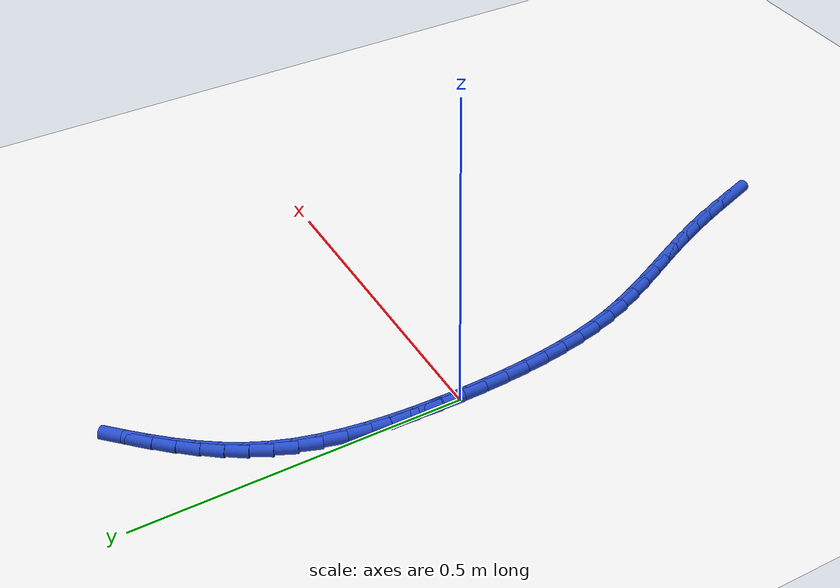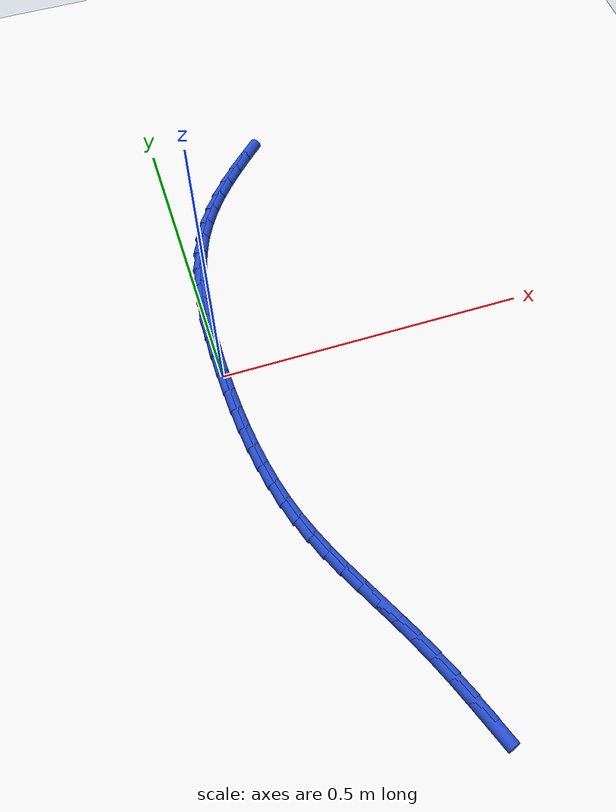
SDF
<sdf version="1.6">
 <world name="default">
  <model name="ground_plane">
   <static>1</static>
   <link name="link">
    <collision name="collision">
     <geometry><plane><normal>0 0 1</normal><size>100 100</size></plane></geometry>
     <surface><friction><ode><mu>100</mu><mu2>50</mu2></ode></friction></surface>
    </collision>
    <visual name="visual">
     <cast_shadows>0</cast_shadows>
     <geometry><plane><normal>0 0 1</normal><size>100 100</size></plane></geometry>
     <material>
      <script><uri>file://media/materials/scripts/gazebo.material</uri><name>Gazebo/WhiteGlow</name></script>
     </material>
    </visual>
   </link>
  </model>
  <model name="line">
   <link name="link_0">
    <pose>1.3010426069826053e-18 8.326672684688674e-17 0.01 0 1.57 -1.565366141619233</pose>
    <collision name="collision">
     <geometry><cylinder><radius>0.01</radius><length>0.08</length></cylinder></geometry>
    </collision>
    <visual name="visual">
     <material>
      <script><name>Gazebo/Blue</name><uri>file://media/materials/scripts/gazebo.material</uri></script>
     </material>
     <geometry><cylinder><radius>0.01</radius><length>0.08</length></cylinder></geometry>
    </visual>
   </link>
   <link name="link_1">
    <pose>-0.00019903912547662052 0.03665384562116599 0.01 0 1.57 1.5497522830583188</pose>
    <collision name="collision">
     <geometry><cylinder><radius>0.01</radius><length>0.08</length></cylinder></geometry>
    </collision>
    <visual name="visual">
     <material>
      <script><name>Gazebo/Blue</name><uri>file://media/materials/scripts/gazebo.material</uri></script>
     </material>
     <geometry><cylinder><radius>0.01</radius><length>0.08</length></cylinder></geometry>
    </visual>
   </link>
   <link name="link_2">
    <pose>0.0005720877665993205 0.0732919113241402 0.01 0 1.57 1.5162058321206462</pose>
    <collision name="collision">
     <geometry><cylinder><radius>0.01</radius><length>0.08</length></cylinder></geometry>
    </collision>
    <visual name="visual">
     <material>
      <script><name>Gazebo/Blue</name><uri>file://media/materials/scripts/gazebo.material</uri></script>
     </material>
     <geometry><cylinder><radius>0.01</radius><length>0.08</length></cylinder></geometry>
    </visual>
   </link>
   <link name="link_3">
    <pose>0.002559975060530085 0.1096702624953205 0.01 0 1.57 1.4748888044440365</pose>
    <collision name="collision">
     <geometry><cylinder><radius>0.01</radius><length>0.08</length></cylinder></geometry>
    </collision>
    <visual name="visual">
     <material>
      <script><name>Gazebo/Blue</name><uri>file://media/materials/scripts/gazebo.material</uri></script>
     </material>
     <geometry><cylinder><radius>0.01</radius><length>0.08</length></cylinder></geometry>
    </visual>
   </link>
   <link name="link_4">
    <pose>0.006011217140617942 0.1455449645211047 0.01 0 1.57 1.4249111777290846</pose>
    <collision name="collision">
     <geometry><cylinder><radius>0.01</radius><length>0.08</length></cylinder></geometry>
    </collision>
    <visual name="visual">
     <material>
      <script><name>Gazebo/Blue</name><uri>file://media/materials/scripts/gazebo.material</uri></script>
     </material>
     <geometry><cylinder><radius>0.01</radius><length>0.08</length></cylinder></geometry>
    </visual>
   </link>
   <link name="link_5">
    <pose>0.011172408391165156 0.1806720827878907 0.01 0 1.57 1.3652282323918097</pose>
    <collision name="collision">
     <geometry><cylinder><radius>0.01</radius><length>0.08</length></cylinder></geometry>
    </collision>
    <visual name="visual">
     <material>
      <script><name>Gazebo/Blue</name><uri>file://media/materials/scripts/gazebo.material</uri></script>
     </material>
     <geometry><cylinder><radius>0.01</radius><length>0.08</length></cylinder></geometry>
    </visual>
   </link>
   <link name="link_6">
    <pose>0.018290143196473988 0.21480768268207634 0.01 0 1.57 1.294722816720855</pose>
    <collision name="collision">
     <geometry><cylinder><radius>0.01</radius><length>0.08</length></cylinder></geometry>
    </collision>
    <visual name="visual">
     <material>
      <script><name>Gazebo/Blue</name><uri>file://media/materials/scripts/gazebo.material</uri></script>
     </material>
     <geometry><cylinder><radius>0.01</radius><length>0.08</length></cylinder></geometry>
    </visual>
   </link>
   <link name="link_7">
    <pose>0.027611015940846702 0.24770782959005927 0.01 0 1.57 1.2123655410511154</pose>
    <collision name="collision">
     <geometry><cylinder><radius>0.01</radius><length>0.08</length></cylinder></geometry>
    </collision>
    <visual name="visual">
     <material>
      <script><name>Gazebo/Blue</name><uri>file://media/materials/scripts/gazebo.material</uri></script>
     </material>
     <geometry><cylinder><radius>0.01</radius><length>0.08</length></cylinder></geometry>
    </visual>
   </link>
   <link name="link_8">
    <pose>0.039381621008585575 0.27912858889823744 0.01 0 1.57 1.1202044283204897</pose>
    <collision name="collision">
     <geometry><cylinder><radius>0.01</radius><length>0.08</length></cylinder></geometry>
    </collision>
    <visual name="visual">
     <material>
      <script><name>Gazebo/Blue</name><uri>file://media/materials/scripts/gazebo.material</uri></script>
     </material>
     <geometry><cylinder><radius>0.01</radius><length>0.08</length></cylinder></geometry>
    </visual>
   </link>
   <link name="link_9">
    <pose>0.05377998950423215 0.3088904871146969 0.01 0 1.57 1.0331039443091243</pose>
    <collision name="collision">
     <geometry><cylinder><radius>0.01</radius><length>0.08</length></cylinder></geometry>
    </collision>
    <visual name="visual">
     <material>
      <script><name>Gazebo/Blue</name><uri>file://media/materials/scripts/gazebo.material</uri></script>
     </material>
     <geometry><cylinder><radius>0.01</radius><length>0.08</length></cylinder></geometry>
    </visual>
   </link>
   <link name="link_10">
    <pose>0.0706295364994129 0.33714745001503477 0.01 0 1.57 0.9575793137139381</pose>
    <collision name="collision">
     <geometry><cylinder><radius>0.01</radius><length>0.08</length></cylinder></geometry>
    </collision>
    <visual name="visual">
     <material>
      <script><name>Gazebo/Blue</name><uri>file://media/materials/scripts/gazebo.material</uri></script>
     </material>
     <geometry><cylinder><radius>0.01</radius><length>0.08</length></cylinder></geometry>
    </visual>
   </link>
   <link name="link_11">
    <pose>0.08963937092457887 0.3641608705511814 0.01 0 1.57 0.894789049111524</pose>
    <collision name="collision">
     <geometry><cylinder><radius>0.01</radius><length>0.08</length></cylinder></geometry>
    </collision>
    <visual name="visual">
     <material>
      <script><name>Gazebo/Blue</name><uri>file://media/materials/scripts/gazebo.material</uri></script>
     </material>
     <geometry><cylinder><radius>0.01</radius><length>0.08</length></cylinder></geometry>
    </visual>
   </link>
   <link name="link_12">
    <pose>0.11051854609933574 0.39019219395870175 0.01 0 1.57 0.8450553062116164</pose>
    <collision name="collision">
     <geometry><cylinder><radius>0.01</radius><length>0.08</length></cylinder></geometry>
    </collision>
    <visual name="visual">
     <material>
      <script><name>Gazebo/Blue</name><uri>file://media/materials/scripts/gazebo.material</uri></script>
     </material>
     <geometry><cylinder><radius>0.01</radius><length>0.08</length></cylinder></geometry>
    </visual>
   </link>
   <link name="link_13">
    <pose>0.1329761153432892 0.415502865473161 0.01 0 1.57 0.8081623031246014</pose>
    <collision name="collision">
     <geometry><cylinder><radius>0.01</radius><length>0.08</length></cylinder></geometry>
    </collision>
    <visual name="visual">
     <material>
      <script><name>Gazebo/Blue</name><uri>file://media/materials/scripts/gazebo.material</uri></script>
     </material>
     <geometry><cylinder><radius>0.01</radius><length>0.08</length></cylinder></geometry>
    </visual>
   </link>
   <link name="link_14">
    <pose>0.15672113197604493 0.4403543303301238 0.01 0 1.57 0.7836203838422565</pose>
    <collision name="collision">
     <geometry><cylinder><radius>0.01</radius><length>0.08</length></cylinder></geometry>
    </collision>
    <visual name="visual">
     <material>
      <script><name>Gazebo/Blue</name><uri>file://media/materials/scripts/gazebo.material</uri></script>
     </material>
     <geometry><cylinder><radius>0.01</radius><length>0.08</length></cylinder></geometry>
    </visual>
   </link>
   <link name="link_201">
    <pose>0.197819916946798 -0.6434014601299012 0.01 0 1.57 -1.2238929459455197</pose>
    <collision name="collision">
     <geometry><cylinder><radius>0.01</radius><length>0.08</length></cylinder></geometry>
    </collision>
    <visual name="visual">
     <material>
      <script><name>Gazebo/Blue</name><uri>file://media/materials/scripts/gazebo.material</uri></script>
     </material>
     <geometry><cylinder><radius>0.01</radius><length>0.08</length></cylinder></geometry>
    </visual>
   </link>
   <link name="link_202">
    <pose>0.18443049344288495 -0.6063653226381268 0.01 0 1.57 -1.2088075042507491</pose>
    <collision name="collision">
     <geometry><cylinder><radius>0.01</radius><length>0.08</length></cylinder></geometry>
    </collision>
    <visual name="visual">
     <material>
      <script><name>Gazebo/Blue</name><uri>file://media/materials/scripts/gazebo.material</uri></script>
     </material>
     <geometry><cylinder><radius>0.01</radius><length>0.08</length></cylinder></geometry>
    </visual>
   </link>
   <link name="link_203">
    <pose>0.17065720484481067 -0.5699930164666535 0.01 0 1.57 -1.1824705855849325</pose>
    <collision name="collision">
     <geometry><cylinder><radius>0.01</radius><length>0.08</length></cylinder></geometry>
    </collision>
    <visual name="visual">
     <material>
      <script><name>Gazebo/Blue</name><uri>file://media/materials/scripts/gazebo.material</uri></script>
     </material>
     <geometry><cylinder><radius>0.01</radius><length>0.08</length></cylinder></geometry>
    </visual>
   </link>
   <link name="link_204">
    <pose>0.1562265519989675 -0.5347187942025068 0.01 0 1.57 -1.149622111572326</pose>
    <collision name="collision">
     <geometry><cylinder><radius>0.01</radius><length>0.08</length></cylinder></geometry>
    </collision>
    <visual name="visual">
     <material>
      <script><name>Gazebo/Blue</name><uri>file://media/materials/scripts/gazebo.material</uri></script>
     </material>
     <geometry><cylinder><radius>0.01</radius><length>0.08</length></cylinder></geometry>
    </visual>
   </link>
   <link name="link_205">
    <pose>0.14102585524156896 -0.5007872792983249 0.01 0 1.57 -1.124571943869656</pose>
    <collision name="collision">
     <geometry><cylinder><radius>0.01</radius><length>0.08</length></cylinder></geometry>
    </collision>
    <visual name="visual">
     <material>
      <script><name>Gazebo/Blue</name><uri>file://media/materials/scripts/gazebo.material</uri></script>
     </material>
     <geometry><cylinder><radius>0.01</radius><length>0.08</length></cylinder></geometry>
    </visual>
   </link>
   <link name="link_206">
    <pose>0.12533226663645344 -0.4679834279540557 0.01 0 1.57 -1.1103666637502245</pose>
    <collision name="collision">
     <geometry><cylinder><radius>0.01</radius><length>0.08</length></cylinder></geometry>
    </collision>
    <visual name="visual">
     <material>
      <script><name>Gazebo/Blue</name><uri>file://media/materials/scripts/gazebo.material</uri></script>
     </material>
     <geometry><cylinder><radius>0.01</radius><length>0.08</length></cylinder></geometry>
    </visual>
   </link>
   <link name="link_207">
    <pose>0.10948085420692759 -0.4360239051863253 0.01 0 1.57 -1.1077883497795822</pose>
    <collision name="collision">
     <geometry><cylinder><radius>0.01</radius><length>0.08</length></cylinder></geometry>
    </collision>
    <visual name="visual">
     <material>
      <script><name>Gazebo/Blue</name><uri>file://media/materials/scripts/gazebo.material</uri></script>
     </material>
     <geometry><cylinder><radius>0.01</radius><length>0.08</length></cylinder></geometry>
    </visual>
   </link>
   <link name="link_208">
    <pose>0.09380668597629913 -0.4046253760117621 0.01 0 1.57 -1.1174470811256536</pose>
    <collision name="collision">
     <geometry><cylinder><radius>0.01</radius><length>0.08</length></cylinder></geometry>
    </collision>
    <visual name="visual">
     <material>
      <script><name>Gazebo/Blue</name><uri>file://media/materials/scripts/gazebo.material</uri></script>
     </material>
     <geometry><cylinder><radius>0.01</radius><length>0.08</length></cylinder></geometry>
    </visual>
   </link>
   <link name="link_209">
    <pose>0.07864482996787459 -0.3735045054469917 0.01 0 1.57 -1.1397566502305823</pose>
    <collision name="collision">
     <geometry><cylinder><radius>0.01</radius><length>0.08</length></cylinder></geometry>
    </collision>
    <visual name="visual">
     <material>
      <script><name>Gazebo/Blue</name><uri>file://media/materials/scripts/gazebo.material</uri></script>
     </material>
     <geometry><cylinder><radius>0.01</radius><length>0.08</length></cylinder></geometry>
    </visual>
   </link>
   <link name="link_210">
    <pose>0.06433035420496098 -0.34237795850864106 0.01 0 1.57 -1.1748608676598002</pose>
    <collision name="collision">
     <geometry><cylinder><radius>0.01</radius><length>0.08</length></cylinder></geometry>
    </collision>
    <visual name="visual">
     <material>
      <script><name>Gazebo/Blue</name><uri>file://media/materials/scripts/gazebo.material</uri></script>
     </material>
     <geometry><cylinder><radius>0.01</radius><length>0.08</length></cylinder></geometry>
    </visual>
   </link>
   <link name="link_211">
    <pose>0.05119832671086522 -0.31096240021333676 0.01 0 1.57 -1.222505612148106</pose>
    <collision name="collision">
     <geometry><cylinder><radius>0.01</radius><length>0.08</length></cylinder></geometry>
    </collision>
    <visual name="visual">
     <material>
      <script><name>Gazebo/Blue</name><uri>file://media/materials/scripts/gazebo.material</uri></script>
     </material>
     <geometry><cylinder><radius>0.01</radius><length>0.08</length></cylinder></geometry>
    </visual>
   </link>
   <link name="link_212">
    <pose>0.039583766764352615 -0.27897453261003524 0.01 0 1.57 -1.2784421771224281</pose>
    <collision name="collision">
     <geometry><cylinder><radius>0.01</radius><length>0.08</length></cylinder></geometry>
    </collision>
    <visual name="visual">
     <material>
      <script><name>Gazebo/Blue</name><uri>file://media/materials/scripts/gazebo.material</uri></script>
     </material>
     <geometry><cylinder><radius>0.01</radius><length>0.08</length></cylinder></geometry>
    </visual>
   </link>
   <link name="link_213">
    <pose>0.02972150094976025 -0.24620717640322215 0.01 0 1.57 -1.3312582553492058</pose>
    <collision name="collision">
     <geometry><cylinder><radius>0.01</radius><length>0.08</length></cylinder></geometry>
    </collision>
    <visual name="visual">
     <material>
      <script><name>Gazebo/Blue</name><uri>file://media/materials/scripts/gazebo.material</uri></script>
     </material>
     <geometry><cylinder><radius>0.01</radius><length>0.08</length></cylinder></geometry>
    </visual>
   </link>
   <link name="link_214">
    <pose>0.021535524469487068 -0.21268929792679683 0.01 0 1.57 -1.378832857230034</pose>
    <collision name="collision">
     <geometry><cylinder><radius>0.01</radius><length>0.08</length></cylinder></geometry>
    </collision>
    <visual name="visual">
     <material>
      <script><name>Gazebo/Blue</name><uri>file://media/materials/scripts/gazebo.material</uri></script>
     </material>
     <geometry><cylinder><radius>0.01</radius><length>0.08</length></cylinder></geometry>
    </visual>
   </link>
   <link name="link_215">
    <pose>0.01488973479480897 -0.17849552111993094 0.01 0 1.57 -1.421275494122526</pose>
    <collision name="collision">
     <geometry><cylinder><radius>0.01</radius><length>0.08</length></cylinder></geometry>
    </collision>
    <visual name="visual">
     <material>
      <script><name>Gazebo/Blue</name><uri>file://media/materials/scripts/gazebo.material</uri></script>
     </material>
     <geometry><cylinder><radius>0.01</radius><length>0.08</length></cylinder></geometry>
    </visual>
   </link>
   <link name="link_216">
    <pose>0.009648029397001696 -0.14370046992179525 0.01 0 1.57 -1.4587664637499829</pose>
    <collision name="collision">
     <geometry><cylinder><radius>0.01</radius><length>0.08</length></cylinder></geometry>
    </collision>
    <visual name="visual">
     <material>
      <script><name>Gazebo/Blue</name><uri>file://media/materials/scripts/gazebo.material</uri></script>
     </material>
     <geometry><cylinder><radius>0.01</radius><length>0.08</length></cylinder></geometry>
    </visual>
   </link>
   <link name="link_217">
    <pose>0.0056743057473413825 -0.1083787682715632 0.01 0 1.57 -1.4915233750140382</pose>
    <collision name="collision">
     <geometry><cylinder><radius>0.01</radius><length>0.08</length></cylinder></geometry>
    </collision>
    <visual name="visual">
     <material>
      <script><name>Gazebo/Blue</name><uri>file://media/materials/scripts/gazebo.material</uri></script>
     </material>
     <geometry><cylinder><radius>0.01</radius><length>0.08</length></cylinder></geometry>
    </visual>
   </link>
   <link name="link_218">
    <pose>0.0028324613171037487 -0.0726050401084056 0.01 0 1.57 -1.5197753610066596</pose>
    <collision name="collision">
     <geometry><cylinder><radius>0.01</radius><length>0.08</length></cylinder></geometry>
    </collision>
    <visual name="visual">
     <material>
      <script><name>Gazebo/Blue</name><uri>file://media/materials/scripts/gazebo.material</uri></script>
     </material>
     <geometry><cylinder><radius>0.01</radius><length>0.08</length></cylinder></geometry>
    </visual>
   </link>
   <link name="link_219">
    <pose>0.0009863935775646655 -0.03645390937149416 0.01 0 1.57 -1.5437442776687456</pose>
    <collision name="collision">
     <geometry><cylinder><radius>0.01</radius><length>0.08</length></cylinder></geometry>
    </collision>
    <visual name="visual">
     <material>
      <script><name>Gazebo/Blue</name><uri>file://media/materials/scripts/gazebo.material</uri></script>
     </material>
     <geometry><cylinder><radius>0.01</radius><length>0.08</length></cylinder></geometry>
    </visual>
   </link>
   <link name="link_220">
    <pose>-8.239936510889834e-18 3.7470027081099033e-16 0.01 0 1.57 -1.5636315869201245</pose>
    <collision name="collision">
     <geometry><cylinder><radius>0.01</radius><length>0.08</length></cylinder></geometry>
    </collision>
    <visual name="visual">
     <material>
      <script><name>Gazebo/Blue</name><uri>file://media/materials/scripts/gazebo.material</uri></script>
     </material>
     <geometry><cylinder><radius>0.01</radius><length>0.08</length></cylinder></geometry>
    </visual>
   </link>
   <link name="link_221">
    <pose>-0.00026282194431436054 0.036682064066903594 0.01 0 1.57 1.5619831460554843</pose>
    <collision name="collision">
     <geometry><cylinder><radius>0.01</radius><length>0.08</length></cylinder></geometry>
    </collision>
    <visual name="visual">
     <material>
      <script><name>Gazebo/Blue</name><uri>file://media/materials/scripts/gazebo.material</uri></script>
     </material>
     <geometry><cylinder><radius>0.01</radius><length>0.08</length></cylinder></geometry>
    </visual>
   </link>
   <link name="link_222">
    <pose>6.182521589745069e-05 0.07351765889004742 0.01 0 1.57 1.569955369639073</pose>
    <collision name="collision">
     <geometry><cylinder><radius>0.01</radius><length>0.08</length></cylinder></geometry>
    </collision>
    <visual name="visual">
     <material>
      <script><name>Gazebo/Blue</name><uri>file://media/materials/scripts/gazebo.material</uri></script>
     </material>
     <geometry><cylinder><radius>0.01</radius><length>0.08</length></cylinder></geometry>
    </visual>
   </link>
  </model>
 </world>
</sdf>
